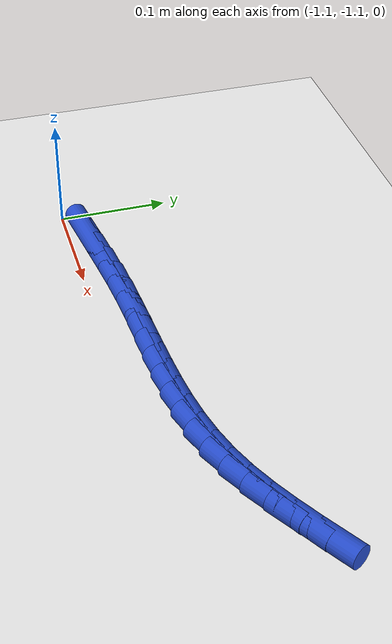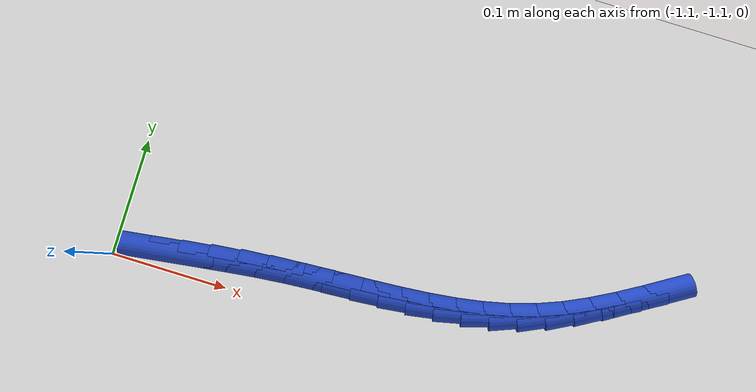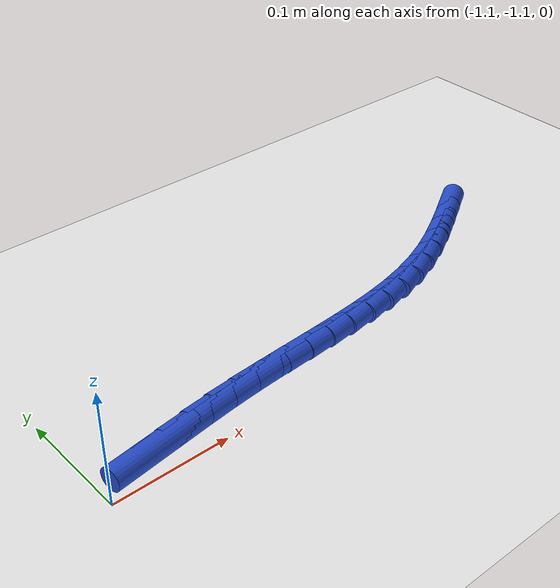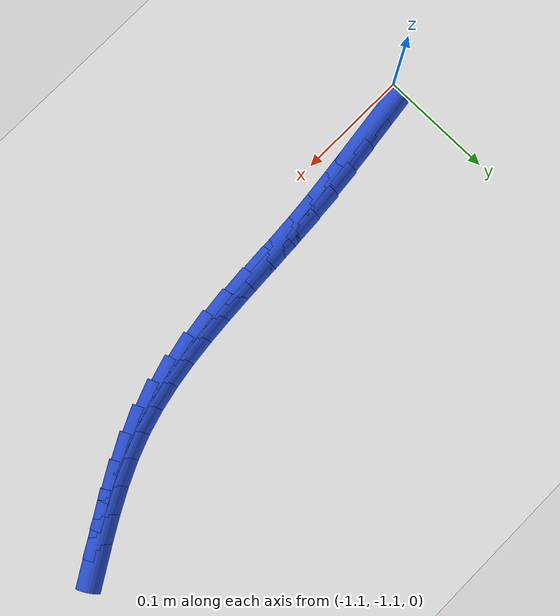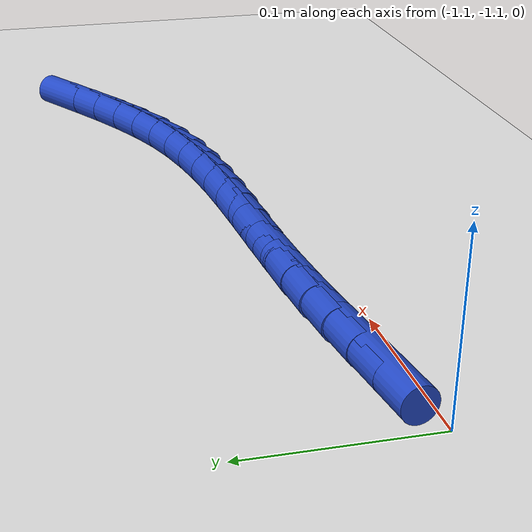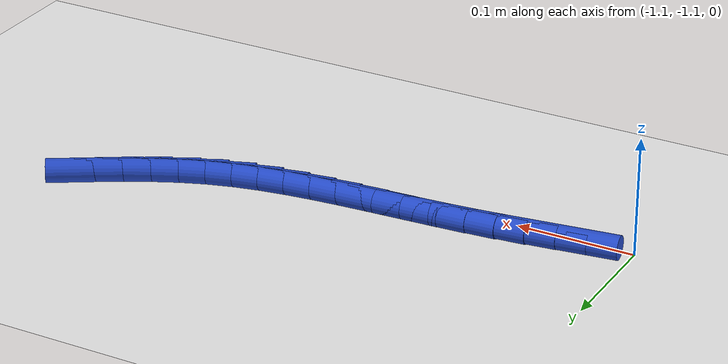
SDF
<sdf version="1.6">
 <world name="default">
  <model name="ground_plane">
   <static>1</static>
   <link name="link">
    <collision name="collision">
     <geometry><plane><normal>0 0 1</normal><size>100 100</size></plane></geometry>
     <surface><friction><ode><mu>100</mu><mu2>50</mu2></ode></friction></surface>
    </collision>
    <visual name="visual">
     <cast_shadows>0</cast_shadows>
     <geometry><plane><normal>0 0 1</normal><size>100 100</size></plane></geometry>
     <material>
      <script><uri>file://media/materials/scripts/gazebo.material</uri><name>Gazebo/WhiteGlow</name></script>
     </material>
    </visual>
   </link>
  </model>
  <model name="line">
   <link name="link_218">
    <pose>-1.0528329149736588 -1.0827867277645236 0.01 0 1.57 0.13327049369167027</pose>
    <collision name="collision">
     <geometry><cylinder><radius>0.01</radius><length>0.08</length></cylinder></geometry>
    </collision>
    <visual name="visual">
     <material>
      <script><name>Gazebo/Blue</name><uri>file://media/materials/scripts/gazebo.material</uri></script>
     </material>
     <geometry><cylinder><radius>0.01</radius><length>0.08</length></cylinder></geometry>
    </visual>
   </link>
   <link name="link_219">
    <pose>-1.0282640738766422 -1.0794929024824589 0.01 0 1.57 0.13214845156240193</pose>
    <collision name="collision">
     <geometry><cylinder><radius>0.01</radius><length>0.08</length></cylinder></geometry>
    </collision>
    <visual name="visual">
     <material>
      <script><name>Gazebo/Blue</name><uri>file://media/materials/scripts/gazebo.material</uri></script>
     </material>
     <geometry><cylinder><radius>0.01</radius><length>0.08</length></cylinder></geometry>
    </visual>
   </link>
   <link name="link_220">
    <pose>-1.0036382475345256 -1.076219561089668 0.01 0 1.57 0.11990399723470824</pose>
    <collision name="collision">
     <geometry><cylinder><radius>0.01</radius><length>0.08</length></cylinder></geometry>
    </collision>
    <visual name="visual">
     <material>
      <script><name>Gazebo/Blue</name><uri>file://media/materials/scripts/gazebo.material</uri></script>
     </material>
     <geometry><cylinder><radius>0.01</radius><length>0.08</length></cylinder></geometry>
    </visual>
   </link>
   <link name="link_221">
    <pose>-0.9790347670147166 -1.0732552860319706 0.01 0 1.57 0.09674101675308602</pose>
    <collision name="collision">
     <geometry><cylinder><radius>0.01</radius><length>0.08</length></cylinder></geometry>
    </collision>
    <visual name="visual">
     <material>
      <script><name>Gazebo/Blue</name><uri>file://media/materials/scripts/gazebo.material</uri></script>
     </material>
     <geometry><cylinder><radius>0.01</radius><length>0.08</length></cylinder></geometry>
    </visual>
   </link>
   <link name="link_222">
    <pose>-0.9545321593808707 -1.07087745632723 0.01 0 1.57 0.0729309660011224</pose>
    <collision name="collision">
     <geometry><cylinder><radius>0.01</radius><length>0.08</length></cylinder></geometry>
    </collision>
    <visual name="visual">
     <material>
      <script><name>Gazebo/Blue</name><uri>file://media/materials/scripts/gazebo.material</uri></script>
     </material>
     <geometry><cylinder><radius>0.01</radius><length>0.08</length></cylinder></geometry>
    </visual>
   </link>
   <link name="link_223">
    <pose>-0.9301899738246749 -1.0690990029475225 0.01 0 1.57 0.05934709785598325</pose>
    <collision name="collision">
     <geometry><cylinder><radius>0.01</radius><length>0.08</length></cylinder></geometry>
    </collision>
    <visual name="visual">
     <material>
      <script><name>Gazebo/Blue</name><uri>file://media/materials/scripts/gazebo.material</uri></script>
     </material>
     <geometry><cylinder><radius>0.01</radius><length>0.08</length></cylinder></geometry>
    </visual>
   </link>
   <link name="link_224">
    <pose>-0.9060485077962301 -1.0676645925701034 0.01 0 1.57 0.0567420847313851</pose>
    <collision name="collision">
     <geometry><cylinder><radius>0.01</radius><length>0.08</length></cylinder></geometry>
    </collision>
    <visual name="visual">
     <material>
      <script><name>Gazebo/Blue</name><uri>file://media/materials/scripts/gazebo.material</uri></script>
     </material>
     <geometry><cylinder><radius>0.01</radius><length>0.08</length></cylinder></geometry>
    </visual>
   </link>
   <link name="link_225">
    <pose>-0.8821471999644355 -1.0663069251453463 0.01 0 1.57 0.06544882631851814</pose>
    <collision name="collision">
     <geometry><cylinder><radius>0.01</radius><length>0.08</length></cylinder></geometry>
    </collision>
    <visual name="visual">
     <material>
      <script><name>Gazebo/Blue</name><uri>file://media/materials/scripts/gazebo.material</uri></script>
     </material>
     <geometry><cylinder><radius>0.01</radius><length>0.08</length></cylinder></geometry>
    </visual>
   </link>
   <link name="link_226">
    <pose>-0.8585254889981901 -1.0647587006236243 0.01 0 1.57 0.08587631080575014</pose>
    <collision name="collision">
     <geometry><cylinder><radius>0.01</radius><length>0.08</length></cylinder></geometry>
    </collision>
    <visual name="visual">
     <material>
      <script><name>Gazebo/Blue</name><uri>file://media/materials/scripts/gazebo.material</uri></script>
     </material>
     <geometry><cylinder><radius>0.01</radius><length>0.08</length></cylinder></geometry>
    </visual>
   </link>
   <link name="link_227">
    <pose>-0.8352228135663926 -1.0627526189553114 0.01 0 1.57 0.11848077700745858</pose>
    <collision name="collision">
     <geometry><cylinder><radius>0.01</radius><length>0.08</length></cylinder></geometry>
    </collision>
    <visual name="visual">
     <material>
      <script><name>Gazebo/Blue</name><uri>file://media/materials/scripts/gazebo.material</uri></script>
     </material>
     <geometry><cylinder><radius>0.01</radius><length>0.08</length></cylinder></geometry>
    </visual>
   </link>
   <link name="link_228">
    <pose>-0.812278612337942 -1.060021380090781 0.01 0 1.57 0.16368026408418124</pose>
    <collision name="collision">
     <geometry><cylinder><radius>0.01</radius><length>0.08</length></cylinder></geometry>
    </collision>
    <visual name="visual">
     <material>
      <script><name>Gazebo/Blue</name><uri>file://media/materials/scripts/gazebo.material</uri></script>
     </material>
     <geometry><cylinder><radius>0.01</radius><length>0.08</length></cylinder></geometry>
    </visual>
   </link>
   <link name="link_229">
    <pose>-0.789732323981737 -1.0562976839804064 0.01 0 1.57 0.22169939885657342</pose>
    <collision name="collision">
     <geometry><cylinder><radius>0.01</radius><length>0.08</length></cylinder></geometry>
    </collision>
    <visual name="visual">
     <material>
      <script><name>Gazebo/Blue</name><uri>file://media/materials/scripts/gazebo.material</uri></script>
     </material>
     <geometry><cylinder><radius>0.01</radius><length>0.08</length></cylinder></geometry>
    </visual>
   </link>
   <link name="link_230">
    <pose>-0.7676233871666769 -1.0513142305745613 0.01 0 1.57 0.2923415304847329</pose>
    <collision name="collision">
     <geometry><cylinder><radius>0.01</radius><length>0.08</length></cylinder></geometry>
    </collision>
    <visual name="visual">
     <material>
      <script><name>Gazebo/Blue</name><uri>file://media/materials/scripts/gazebo.material</uri></script>
     </material>
     <geometry><cylinder><radius>0.01</radius><length>0.08</length></cylinder></geometry>
    </visual>
   </link>
   <link name="link_231">
    <pose>-0.7459912405616607 -1.0448037198236193 0.01 0 1.57 0.3722107752575495</pose>
    <collision name="collision">
     <geometry><cylinder><radius>0.01</radius><length>0.08</length></cylinder></geometry>
    </collision>
    <visual name="visual">
     <material>
      <script><name>Gazebo/Blue</name><uri>file://media/materials/scripts/gazebo.material</uri></script>
     </material>
     <geometry><cylinder><radius>0.01</radius><length>0.08</length></cylinder></geometry>
    </visual>
   </link>
   <link name="link_232">
    <pose>-0.7248614814966601 -1.0365544778856774 0.01 0 1.57 0.4426016206943155</pose>
    <collision name="collision">
     <geometry><cylinder><radius>0.01</radius><length>0.08</length></cylinder></geometry>
    </collision>
    <visual name="visual">
     <material>
      <script><name>Gazebo/Blue</name><uri>file://media/materials/scripts/gazebo.material</uri></script>
     </material>
     <geometry><cylinder><radius>0.01</radius><length>0.08</length></cylinder></geometry>
    </visual>
   </link>
   <link name="link_233">
    <pose>-0.7041628468978525 -1.0267440979521916 0.01 0 1.57 0.49598272949433947</pose>
    <collision name="collision">
     <geometry><cylinder><radius>0.01</radius><length>0.08</length></cylinder></geometry>
    </collision>
    <visual name="visual">
     <material>
      <script><name>Gazebo/Blue</name><uri>file://media/materials/scripts/gazebo.material</uri></script>
     </material>
     <geometry><cylinder><radius>0.01</radius><length>0.08</length></cylinder></geometry>
    </visual>
   </link>
   <link name="link_234">
    <pose>-0.6837826999638893 -1.0157164478484277 0.01 0 1.57 0.5329422691922995</pose>
    <collision name="collision">
     <geometry><cylinder><radius>0.01</radius><length>0.08</length></cylinder></geometry>
    </collision>
    <visual name="visual">
     <material>
      <script><name>Gazebo/Blue</name><uri>file://media/materials/scripts/gazebo.material</uri></script>
     </material>
     <geometry><cylinder><radius>0.01</radius><length>0.08</length></cylinder></geometry>
    </visual>
   </link>
   <link name="link_235">
    <pose>-0.6636082486598818 -1.0038160192593344 0.01 0 1.57 0.5542096075903873</pose>
    <collision name="collision">
     <geometry><cylinder><radius>0.01</radius><length>0.08</length></cylinder></geometry>
    </collision>
    <visual name="visual">
     <material>
      <script><name>Gazebo/Blue</name><uri>file://media/materials/scripts/gazebo.material</uri></script>
     </material>
     <geometry><cylinder><radius>0.01</radius><length>0.08</length></cylinder></geometry>
    </visual>
   </link>
  </model>
 </world>
</sdf>
